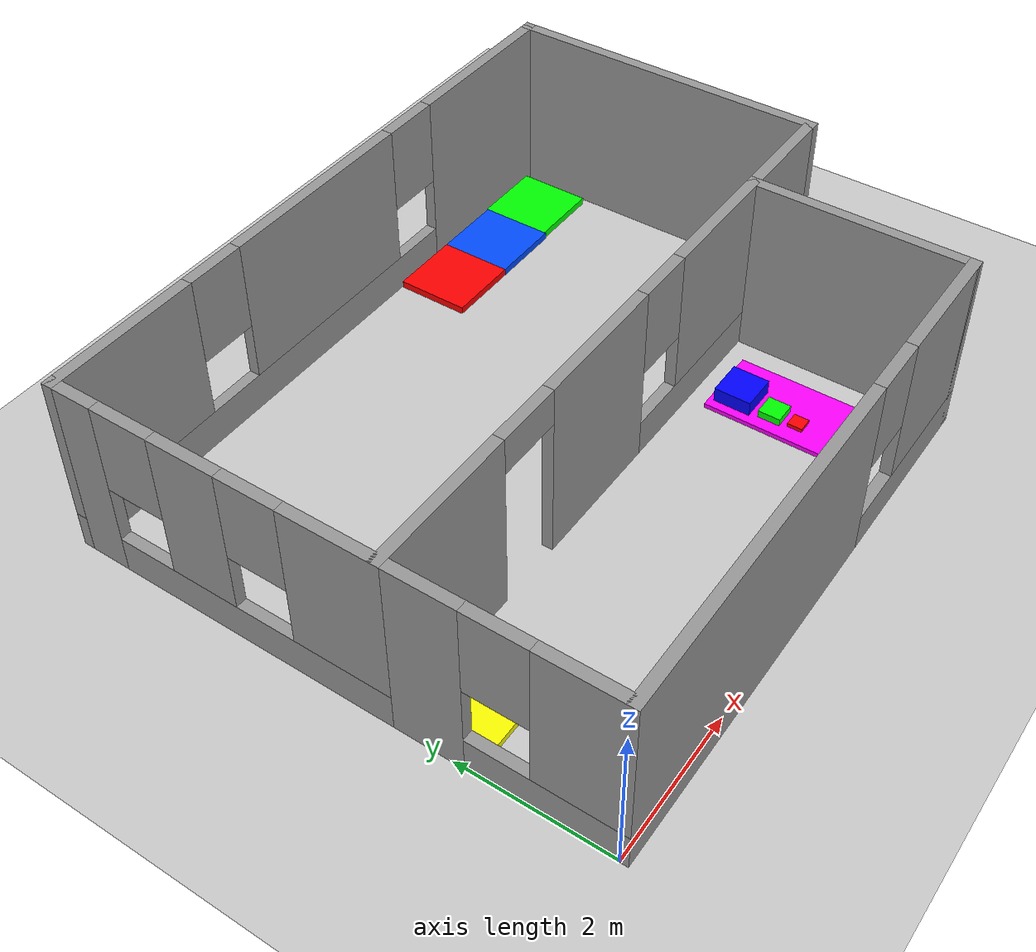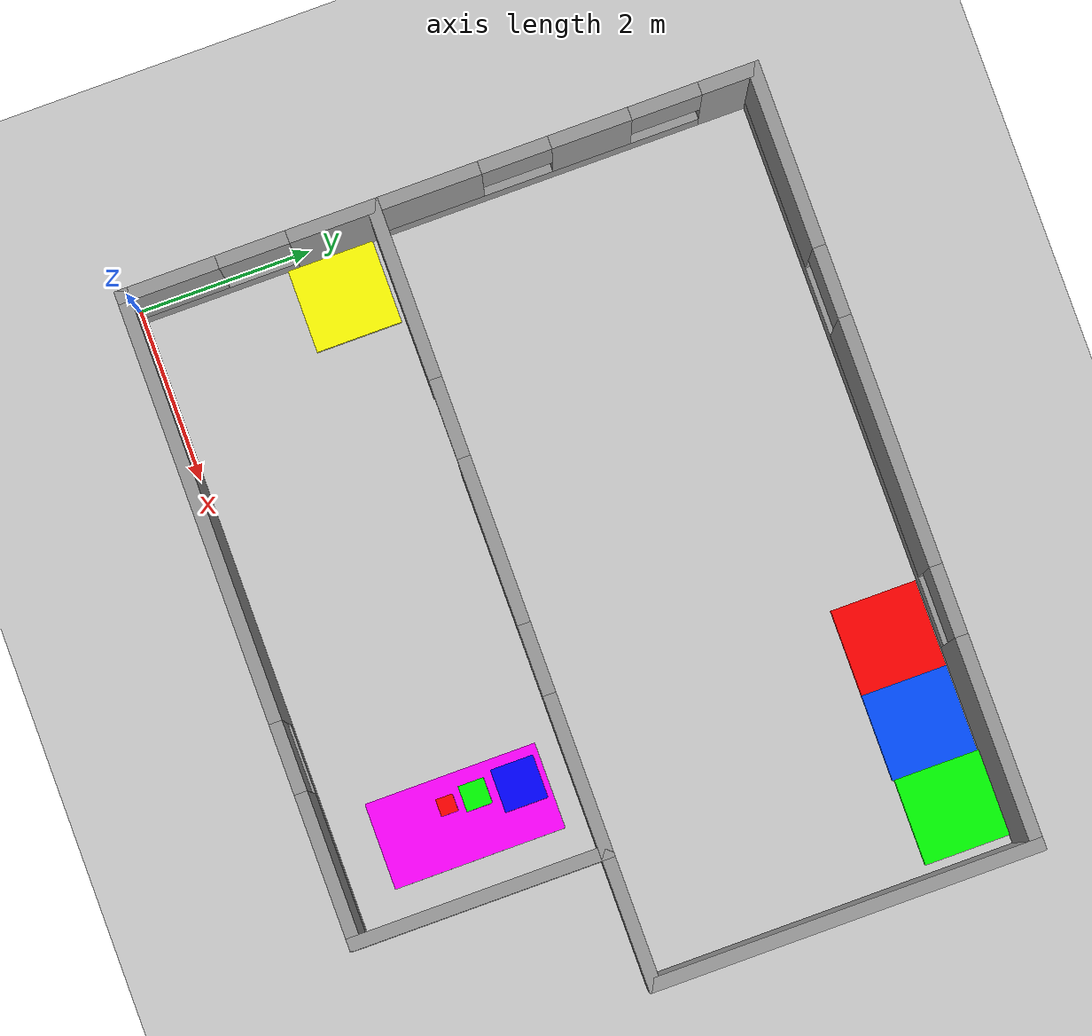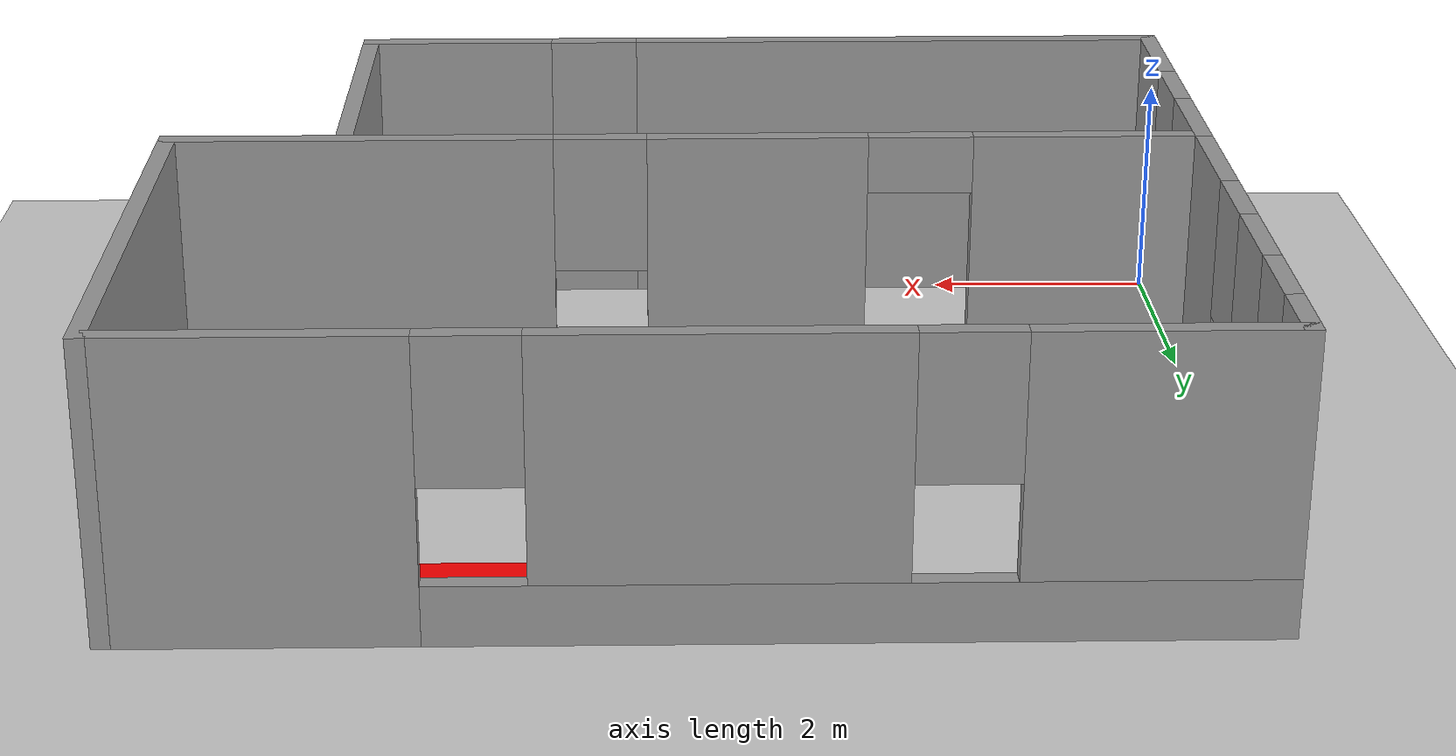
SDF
<sdf version="1.7">
 <world name="default">
  <light name="sun" type="directional">
   <pose>0 0 10 0 -0 0</pose>
   <diffuse>0.8 0.8 0.8 1</diffuse>
   <specular>0.2 0.2 0.2 1</specular>
   <attenuation>
    <range>1000</range>
    <constant>0.9</constant>
    <linear>0.01</linear>
    <quadratic>0.001</quadratic>
   </attenuation>
   <direction>-0.5 0.1 -0.9</direction>
   <spot><inner_angle>0</inner_angle><outer_angle>0</outer_angle><falloff>0</falloff></spot>
  </light>
  <model name="ground_plane">
   <static>1</static>
   <link name="link">
    <collision name="collision">
     <geometry><plane><normal>0 0 1</normal><size>100 100</size></plane></geometry>
     <surface>
      <contact><collide_bitmask>65535</collide_bitmask></contact>
      <friction><ode><mu>100</mu><mu2>50</mu2></ode></friction>
     </surface>
    </collision>
    <visual name="visual">
     <cast_shadows>0</cast_shadows>
     <geometry><plane><normal>0 0 1</normal><size>100 100</size></plane></geometry>
     <material>
      <script><uri>file://media/materials/scripts/gazebo.material</uri><name>Gazebo/Grey</name></script>
     </material>
    </visual>
   </link>
  </model>
  <gravity>0 0 -9.8</gravity>
  <magnetic_field>6e-06 2.3e-05 -4.2e-05</magnetic_field>
  <atmosphere type="adiabatic"/>
  <physics type="ode">
   <max_step_size>0.001</max_step_size>
   <real_time_factor>1</real_time_factor>
   <real_time_update_rate>1000</real_time_update_rate>
  </physics>
  <scene><ambient>0.4 0.4 0.4 1</ambient><background>0.7 0.7 0.7 1</background><shadows>1</shadows></scene>
  <spherical_coordinates>
   <surface_model>EARTH_WGS84</surface_model>
   <latitude_deg>0</latitude_deg>
   <longitude_deg>0</longitude_deg>
   <elevation>0</elevation>
   <heading_deg>0</heading_deg>
  </spherical_coordinates>
  <model name="Wall">
   <pose>4.48981 3.69223 0 0 -0 0</pose>
   <link name="Wall_0">
    <pose>-4.425 1.3025 0 0 -0 -1.5708</pose>
    <visual name="Wall_0_Visual_0">
     <pose>-1.90146 0 1.25 0 -0 0</pose>
     <geometry><box><size>0.697073 0.15 2.5</size></box></geometry>
     <material>
      <script><uri>file://media/materials/scripts/gazebo.material</uri><name>Gazebo/Grey</name></script>
      <ambient>1 1 1 1</ambient>
     </material>
     <meta><layer>0</layer></meta>
    </visual>
    <collision name="Wall_0_Collision_0">
     <geometry><box><size>0.697073 0.15 2.5</size></box></geometry>
     <pose>-1.90146 0 1.25 0 -0 0</pose>
    </collision>
    <visual name="Wall_0_Visual_1">
     <pose>0.348536 0 0.25 0 -0 0</pose>
     <geometry><box><size>3.80293 0.15 0.5</size></box></geometry>
     <material>
      <script><uri>file://media/materials/scripts/gazebo.material</uri><name>Gazebo/Grey</name></script>
      <ambient>1 1 1 1</ambient>
     </material>
     <meta><layer>0</layer></meta>
    </visual>
    <collision name="Wall_0_Collision_1">
     <geometry><box><size>3.80293 0.15 0.5</size></box></geometry>
     <pose>0.348536 0 0.25 0 -0 0</pose>
    </collision>
    <visual name="Wall_0_Visual_2">
     <pose>-0.295914 0 1.5 0 -0 0</pose>
     <geometry><box><size>0.914026 0.15 2</size></box></geometry>
     <material>
      <script><uri>file://media/materials/scripts/gazebo.material</uri><name>Gazebo/Grey</name></script>
      <ambient>1 1 1 1</ambient>
     </material>
     <meta><layer>0</layer></meta>
    </visual>
    <collision name="Wall_0_Collision_2">
     <geometry><box><size>0.914026 0.15 2</size></box></geometry>
     <pose>-0.295914 0 1.5 0 -0 0</pose>
    </collision>
    <visual name="Wall_0_Visual_3">
     <pose>1.60555 0 1.5 0 -0 0</pose>
     <geometry><box><size>1.2889 0.15 2</size></box></geometry>
     <material>
      <script><uri>file://media/materials/scripts/gazebo.material</uri><name>Gazebo/Grey</name></script>
      <ambient>1 1 1 1</ambient>
     </material>
     <meta><layer>0</layer></meta>
    </visual>
    <collision name="Wall_0_Collision_3">
     <geometry><box><size>1.2889 0.15 2</size></box></geometry>
     <pose>1.60555 0 1.5 0 -0 0</pose>
    </collision>
    <visual name="Wall_0_Visual_4">
     <pose>-1.15293 0 1.9 0 -0 0</pose>
     <geometry><box><size>0.8 0.15 1.2</size></box></geometry>
     <material>
      <script><uri>file://media/materials/scripts/gazebo.material</uri><name>Gazebo/Grey</name></script>
      <ambient>1 1 1 1</ambient>
     </material>
     <meta><layer>0</layer></meta>
    </visual>
    <collision name="Wall_0_Collision_4">
     <geometry><box><size>0.8 0.15 1.2</size></box></geometry>
     <pose>-1.15293 0 1.9 0 -0 0</pose>
    </collision>
    <visual name="Wall_0_Visual_5">
     <pose>0.561099 0 1.9 0 -0 0</pose>
     <geometry><box><size>0.8 0.15 1.2</size></box></geometry>
     <material>
      <script><uri>file://media/materials/scripts/gazebo.material</uri><name>Gazebo/Grey</name></script>
      <ambient>1 1 1 1</ambient>
     </material>
     <meta><layer>0</layer></meta>
    </visual>
    <collision name="Wall_0_Collision_5">
     <geometry><box><size>0.8 0.15 1.2</size></box></geometry>
     <pose>0.561099 0 1.9 0 -0 0</pose>
    </collision>
   </link>
   <link name="Wall_1">
    <pose>0 -0.8725 0 0 -0 0</pose>
    <visual name="Wall_1_Visual_0">
     <pose>-3.4775 0 1.25 0 -0 0</pose>
     <geometry><box><size>2.045 0.15 2.5</size></box></geometry>
     <material>
      <script><uri>file://media/materials/scripts/gazebo.material</uri><name>Gazebo/Grey</name></script>
      <ambient>1 1 1 1</ambient>
     </material>
     <meta><layer>0</layer></meta>
    </visual>
    <collision name="Wall_1_Collision_0">
     <geometry><box><size>2.045 0.15 2.5</size></box></geometry>
     <pose>-3.4775 0 1.25 0 -0 0</pose>
    </collision>
    <visual name="Wall_1_Visual_1">
     <pose>-0.608606 0 1.25 0 -0 0</pose>
     <geometry><box><size>1.89279 0.15 2.5</size></box></geometry>
     <material>
      <script><uri>file://media/materials/scripts/gazebo.material</uri><name>Gazebo/Grey</name></script>
      <ambient>1 1 1 1</ambient>
     </material>
     <meta><layer>0</layer></meta>
    </visual>
    <collision name="Wall_1_Collision_1">
     <geometry><box><size>1.89279 0.15 2.5</size></box></geometry>
     <pose>-0.608606 0 1.25 0 -0 0</pose>
    </collision>
    <visual name="Wall_1_Visual_2">
     <pose>2.41889 0 0.25 0 -0 0</pose>
     <geometry><box><size>4.16221 0.15 0.5</size></box></geometry>
     <material>
      <script><uri>file://media/materials/scripts/gazebo.material</uri><name>Gazebo/Grey</name></script>
      <ambient>1 1 1 1</ambient>
     </material>
     <meta><layer>0</layer></meta>
    </visual>
    <collision name="Wall_1_Collision_2">
     <geometry><box><size>4.16221 0.15 0.5</size></box></geometry>
     <pose>2.41889 0 0.25 0 -0 0</pose>
    </collision>
    <visual name="Wall_1_Visual_3">
     <pose>2.81889 0 1.5 0 -0 0</pose>
     <geometry><box><size>3.36221 0.15 2</size></box></geometry>
     <material>
      <script><uri>file://media/materials/scripts/gazebo.material</uri><name>Gazebo/Grey</name></script>
      <ambient>1 1 1 1</ambient>
     </material>
     <meta><layer>0</layer></meta>
    </visual>
    <collision name="Wall_1_Collision_3">
     <geometry><box><size>3.36221 0.15 2</size></box></geometry>
     <pose>2.81889 0 1.5 0 -0 0</pose>
    </collision>
    <visual name="Wall_1_Visual_4">
     <pose>0.737788 0 1.9 0 -0 0</pose>
     <geometry><box><size>0.8 0.15 1.2</size></box></geometry>
     <material>
      <script><uri>file://media/materials/scripts/gazebo.material</uri><name>Gazebo/Grey</name></script>
      <ambient>1 1 1 1</ambient>
     </material>
     <meta><layer>0</layer></meta>
    </visual>
    <collision name="Wall_1_Collision_4">
     <geometry><box><size>0.8 0.15 1.2</size></box></geometry>
     <pose>0.737788 0 1.9 0 -0 0</pose>
    </collision>
    <visual name="Wall_1_Visual_5">
     <pose>-2.005 0 2.25 0 -0 0</pose>
     <geometry><box><size>0.9 0.15 0.5</size></box></geometry>
     <material>
      <script><uri>file://media/materials/scripts/gazebo.material</uri><name>Gazebo/Grey</name></script>
      <ambient>1 1 1 1</ambient>
     </material>
     <meta><layer>0</layer></meta>
    </visual>
    <collision name="Wall_1_Collision_5">
     <geometry><box><size>0.9 0.15 0.5</size></box></geometry>
     <pose>-2.005 0 2.25 0 -0 0</pose>
    </collision>
   </link>
   <link name="Wall_2">
    <collision name="Wall_2_Collision">
     <geometry><box><size>4.5 0.15 2.5</size></box></geometry>
     <pose>0 0 1.25 0 -0 0</pose>
    </collision>
    <visual name="Wall_2_Visual">
     <pose>0 0 1.25 0 -0 0</pose>
     <geometry><box><size>4.5 0.15 2.5</size></box></geometry>
     <material>
      <script><uri>file://media/materials/scripts/gazebo.material</uri><name>Gazebo/Grey</name></script>
      <ambient>1 1 1 1</ambient>
     </material>
     <meta><layer>0</layer></meta>
    </visual>
    <pose>4.425 1.3025 0 0 -0 1.5708</pose>
   </link>
   <link name="Wall_3">
    <pose>0 3.4775 0 0 -0 3.14159</pose>
    <visual name="Wall_3_Visual_0">
     <pose>-3.27364 0 1.25 0 -0 0</pose>
     <geometry><box><size>2.45273 0.15 2.5</size></box></geometry>
     <material>
      <script><uri>file://media/materials/scripts/gazebo.material</uri><name>Gazebo/Grey</name></script>
      <ambient>1 1 1 1</ambient>
     </material>
     <meta><layer>0</layer></meta>
    </visual>
    <collision name="Wall_3_Collision_0">
     <geometry><box><size>2.45273 0.15 2.5</size></box></geometry>
     <pose>-3.27364 0 1.25 0 -0 0</pose>
    </collision>
    <visual name="Wall_3_Visual_1">
     <pose>1.22636 0 0.25 0 -0 0</pose>
     <geometry><box><size>6.54727 0.15 0.5</size></box></geometry>
     <material>
      <script><uri>file://media/materials/scripts/gazebo.material</uri><name>Gazebo/Grey</name></script>
      <ambient>1 1 1 1</ambient>
     </material>
     <meta><layer>0</layer></meta>
    </visual>
    <collision name="Wall_3_Collision_1">
     <geometry><box><size>6.54727 0.15 0.5</size></box></geometry>
     <pose>1.22636 0 0.25 0 -0 0</pose>
    </collision>
    <visual name="Wall_3_Visual_2">
     <pose>0.171695 0 1.5 0 -0 0</pose>
     <geometry><box><size>2.83793 0.15 2</size></box></geometry>
     <material>
      <script><uri>file://media/materials/scripts/gazebo.material</uri><name>Gazebo/Grey</name></script>
      <ambient>1 1 1 1</ambient>
     </material>
     <meta><layer>0</layer></meta>
    </visual>
    <collision name="Wall_3_Collision_2">
     <geometry><box><size>2.83793 0.15 2</size></box></geometry>
     <pose>0.171695 0 1.5 0 -0 0</pose>
    </collision>
    <visual name="Wall_3_Visual_3">
     <pose>3.44533 0 1.5 0 -0 0</pose>
     <geometry><box><size>2.10934 0.15 2</size></box></geometry>
     <material>
      <script><uri>file://media/materials/scripts/gazebo.material</uri><name>Gazebo/Grey</name></script>
      <ambient>1 1 1 1</ambient>
     </material>
     <meta><layer>0</layer></meta>
    </visual>
    <collision name="Wall_3_Collision_3">
     <geometry><box><size>2.10934 0.15 2</size></box></geometry>
     <pose>3.44533 0 1.5 0 -0 0</pose>
    </collision>
    <visual name="Wall_3_Visual_4">
     <pose>-1.64727 0 1.9 0 -0 0</pose>
     <geometry><box><size>0.8 0.15 1.2</size></box></geometry>
     <material>
      <script><uri>file://media/materials/scripts/gazebo.material</uri><name>Gazebo/Grey</name></script>
      <ambient>1 1 1 1</ambient>
     </material>
     <meta><layer>0</layer></meta>
    </visual>
    <collision name="Wall_3_Collision_4">
     <geometry><box><size>0.8 0.15 1.2</size></box></geometry>
     <pose>-1.64727 0 1.9 0 -0 0</pose>
    </collision>
    <visual name="Wall_3_Visual_5">
     <pose>1.99066 0 1.9 0 -0 0</pose>
     <geometry><box><size>0.8 0.15 1.2</size></box></geometry>
     <material>
      <script><uri>file://media/materials/scripts/gazebo.material</uri><name>Gazebo/Grey</name></script>
      <ambient>1 1 1 1</ambient>
     </material>
     <meta><layer>0</layer></meta>
    </visual>
    <collision name="Wall_3_Collision_5">
     <geometry><box><size>0.8 0.15 1.2</size></box></geometry>
     <pose>1.99066 0 1.9 0 -0 0</pose>
    </collision>
   </link>
   <link name="Wall_5">
    <pose>-4.425 -2.2975 0 0 -0 -1.5708</pose>
    <visual name="Wall_5_Visual_0">
     <pose>-0.97405 0 1.25 0 -0 0</pose>
     <geometry><box><size>1.0519 0.15 2.5</size></box></geometry>
     <material>
      <script><uri>file://media/materials/scripts/gazebo.material</uri><name>Gazebo/Grey</name></script>
      <ambient>1 1 1 1</ambient>
     </material>
     <meta><layer>0</layer></meta>
    </visual>
    <collision name="Wall_5_Collision_0">
     <geometry><box><size>1.0519 0.15 2.5</size></box></geometry>
     <pose>-0.97405 0 1.25 0 -0 0</pose>
    </collision>
    <visual name="Wall_5_Visual_1">
     <pose>0.52595 0 0.25 0 -0 0</pose>
     <geometry><box><size>1.9481 0.15 0.5</size></box></geometry>
     <material>
      <script><uri>file://media/materials/scripts/gazebo.material</uri><name>Gazebo/Grey</name></script>
      <ambient>1 1 1 1</ambient>
     </material>
     <meta><layer>0</layer></meta>
    </visual>
    <collision name="Wall_5_Collision_1">
     <geometry><box><size>1.9481 0.15 0.5</size></box></geometry>
     <pose>0.52595 0 0.25 0 -0 0</pose>
    </collision>
    <visual name="Wall_5_Visual_2">
     <pose>0.92595 0 1.5 0 -0 0</pose>
     <geometry><box><size>1.1481 0.15 2</size></box></geometry>
     <material>
      <script><uri>file://media/materials/scripts/gazebo.material</uri><name>Gazebo/Grey</name></script>
      <ambient>1 1 1 1</ambient>
     </material>
     <meta><layer>0</layer></meta>
    </visual>
    <collision name="Wall_5_Collision_2">
     <geometry><box><size>1.1481 0.15 2</size></box></geometry>
     <pose>0.92595 0 1.5 0 -0 0</pose>
    </collision>
    <visual name="Wall_5_Visual_3">
     <pose>-0.0481 0 1.9 0 -0 0</pose>
     <geometry><box><size>0.8 0.15 1.2</size></box></geometry>
     <material>
      <script><uri>file://media/materials/scripts/gazebo.material</uri><name>Gazebo/Grey</name></script>
      <ambient>1 1 1 1</ambient>
     </material>
     <meta><layer>0</layer></meta>
    </visual>
    <collision name="Wall_5_Collision_3">
     <geometry><box><size>0.8 0.15 1.2</size></box></geometry>
     <pose>-0.0481 0 1.9 0 -0 0</pose>
    </collision>
   </link>
   <link name="Wall_6">
    <pose>-0.75 -3.7225 0 0 -0 0</pose>
    <visual name="Wall_6_Visual_0">
     <pose>-1.28738 0 1.25 0 -0 0</pose>
     <geometry><box><size>4.92524 0.15 2.5</size></box></geometry>
     <material>
      <script><uri>file://media/materials/scripts/gazebo.material</uri><name>Gazebo/Grey</name></script>
      <ambient>1 1 1 1</ambient>
     </material>
     <meta><layer>0</layer></meta>
    </visual>
    <collision name="Wall_6_Collision_0">
     <geometry><box><size>4.92524 0.15 2.5</size></box></geometry>
     <pose>-1.28738 0 1.25 0 -0 0</pose>
    </collision>
    <visual name="Wall_6_Visual_1">
     <pose>2.46262 0 0.25 0 -0 0</pose>
     <geometry><box><size>2.57476 0.15 0.5</size></box></geometry>
     <material>
      <script><uri>file://media/materials/scripts/gazebo.material</uri><name>Gazebo/Grey</name></script>
      <ambient>1 1 1 1</ambient>
     </material>
     <meta><layer>0</layer></meta>
    </visual>
    <collision name="Wall_6_Collision_1">
     <geometry><box><size>2.57476 0.15 0.5</size></box></geometry>
     <pose>2.46262 0 0.25 0 -0 0</pose>
    </collision>
    <visual name="Wall_6_Visual_2">
     <pose>2.86262 0 1.5 0 -0 0</pose>
     <geometry><box><size>1.77476 0.15 2</size></box></geometry>
     <material>
      <script><uri>file://media/materials/scripts/gazebo.material</uri><name>Gazebo/Grey</name></script>
      <ambient>1 1 1 1</ambient>
     </material>
     <meta><layer>0</layer></meta>
    </visual>
    <collision name="Wall_6_Collision_2">
     <geometry><box><size>1.77476 0.15 2</size></box></geometry>
     <pose>2.86262 0 1.5 0 -0 0</pose>
    </collision>
    <visual name="Wall_6_Visual_3">
     <pose>1.57524 0 1.9 0 -0 0</pose>
     <geometry><box><size>0.8 0.15 1.2</size></box></geometry>
     <material>
      <script><uri>file://media/materials/scripts/gazebo.material</uri><name>Gazebo/Grey</name></script>
      <ambient>1 1 1 1</ambient>
     </material>
     <meta><layer>0</layer></meta>
    </visual>
    <collision name="Wall_6_Collision_3">
     <geometry><box><size>0.8 0.15 1.2</size></box></geometry>
     <pose>1.57524 0 1.9 0 -0 0</pose>
    </collision>
   </link>
   <link name="Wall_7">
    <collision name="Wall_7_Collision">
     <geometry><box><size>3 0.15 2.5</size></box></geometry>
     <pose>0 0 1.25 0 -0 0</pose>
    </collision>
    <visual name="Wall_7_Visual">
     <pose>0 0 1.25 0 -0 0</pose>
     <geometry><box><size>3 0.15 2.5</size></box></geometry>
     <material>
      <script><uri>file://media/materials/scripts/gazebo.material</uri><name>Gazebo/Grey</name></script>
      <ambient>1 1 1 1</ambient>
     </material>
     <meta><layer>0</layer></meta>
    </visual>
    <pose>2.925 -2.2975 0 0 -0 1.5708</pose>
   </link>
   <static>1</static>
  </model>
  <model name="Base_Blue">
   <link name="link_1">
    <inertial>
     <mass>1</mass>
     <inertia>
      <ixx>0.166667</ixx>
      <ixy>0</ixy>
      <ixz>0</ixz>
      <iyy>0.166667</iyy>
      <iyz>0</iyz>
      <izz>0.166667</izz>
     </inertia>
    </inertial>
    <pose>1.59553 1.28003 0.5 0 -0 0</pose>
    <visual name="visual">
     <geometry><box><size>1 1 0.1</size></box></geometry>
     <material>
      <lighting>1</lighting>
      <script><uri>file://media/materials/scripts/gazebo.material</uri><name>Gazebo/Grey</name></script>
      <shader type="pixel"><normal_map>__default__</normal_map></shader>
      <ambient>0 0.3 1 1</ambient>
      <diffuse>0.7 0.7 0.7 1</diffuse>
      <specular>0.01 0.01 0.01 1</specular>
      <emissive>0 0 0 1</emissive>
     </material>
    </visual>
    <collision name="collision">
     <geometry><box><size>1 1 0.1</size></box></geometry>
     <surface>
      <friction>
       <ode><mu>1</mu><mu2>1</mu2><fdir1>0 0 0</fdir1><slip1>0</slip1><slip2>0</slip2></ode>
       <torsional>
        <coefficient>1</coefficient>
        <patch_radius>0</patch_radius>
        <surface_radius>0</surface_radius>
        <use_patch_radius>1</use_patch_radius>
        <ode><slip>0</slip></ode>
       </torsional>
      </friction>
      <bounce><restitution_coefficient>0</restitution_coefficient><threshold>1e+06</threshold></bounce>
      <contact>
       <collide_without_contact>0</collide_without_contact>
       <collide_without_contact_bitmask>1</collide_without_contact_bitmask>
       <collide_bitmask>1</collide_bitmask>
       <ode>
        <soft_cfm>0</soft_cfm>
        <soft_erp>0.2</soft_erp>
        <kp>1e+13</kp>
        <kd>1</kd>
        <max_vel>0.01</max_vel>
        <min_depth>0</min_depth>
       </ode>
       <bullet>
        <split_impulse>1</split_impulse>
        <split_impulse_penetration_threshold>-0.01</split_impulse_penetration_threshold>
        <soft_cfm>0</soft_cfm>
        <soft_erp>0.2</soft_erp>
        <kp>1e+13</kp>
        <kd>1</kd>
       </bullet>
      </contact>
     </surface>
    </collision>
   </link>
   <static>0</static>
   <pose>5.65 5.3 -0.45 0 -0 0</pose>
  </model>
  <model name="Base_Green">
   <link name="link_1">
    <inertial>
     <mass>1</mass>
     <inertia>
      <ixx>0.166667</ixx>
      <ixy>0</ixy>
      <ixz>0</ixz>
      <iyy>0.166667</iyy>
      <iyz>0</iyz>
      <izz>0.166667</izz>
     </inertia>
    </inertial>
    <pose>1.04417 1.15115 0 0 -0 0</pose>
    <visual name="visual">
     <geometry><box><size>1 1 0.1</size></box></geometry>
     <material>
      <lighting>1</lighting>
      <script><uri>file://media/materials/scripts/gazebo.material</uri><name>Gazebo/Grey</name></script>
      <shader type="pixel"><normal_map>__default__</normal_map></shader>
      <ambient>0 1 0 0</ambient>
      <diffuse>0.7 0.7 0.7 1</diffuse>
      <specular>0.01 0.01 0.01 1</specular>
      <emissive>0 0 0 1</emissive>
     </material>
    </visual>
    <collision name="collision">
     <geometry><box><size>1 1 0.1</size></box></geometry>
     <surface>
      <friction>
       <ode><mu>1</mu><mu2>1</mu2><fdir1>0 0 0</fdir1><slip1>0</slip1><slip2>0</slip2></ode>
       <torsional>
        <coefficient>1</coefficient>
        <patch_radius>0</patch_radius>
        <surface_radius>0</surface_radius>
        <use_patch_radius>1</use_patch_radius>
        <ode><slip>0</slip></ode>
       </torsional>
      </friction>
      <bounce><restitution_coefficient>0</restitution_coefficient><threshold>1e+06</threshold></bounce>
      <contact>
       <collide_without_contact>0</collide_without_contact>
       <collide_without_contact_bitmask>1</collide_without_contact_bitmask>
       <collide_bitmask>1</collide_bitmask>
       <ode>
        <soft_cfm>0</soft_cfm>
        <soft_erp>0.2</soft_erp>
        <kp>1e+13</kp>
        <kd>1</kd>
        <max_vel>0.01</max_vel>
        <min_depth>0</min_depth>
       </ode>
       <bullet>
        <split_impulse>1</split_impulse>
        <split_impulse_penetration_threshold>-0.01</split_impulse_penetration_threshold>
        <soft_cfm>0</soft_cfm>
        <soft_erp>0.2</soft_erp>
        <kp>1e+13</kp>
        <kd>1</kd>
       </bullet>
      </contact>
     </surface>
    </collision>
   </link>
   <static>0</static>
   <pose>7.2 5.45 0.05 0 -0 0</pose>
  </model>
  <model name="Base_Red">
   <link name="link_1">
    <inertial>
     <mass>1</mass>
     <inertia>
      <ixx>0.166667</ixx>
      <ixy>0</ixy>
      <ixz>0</ixz>
      <iyy>0.166667</iyy>
      <iyz>0</iyz>
      <izz>0.166667</izz>
     </inertia>
    </inertial>
    <pose>1.59553 1.28003 0.5 0 -0 0</pose>
    <visual name="visual">
     <geometry><box><size>1 1 0.1</size></box></geometry>
     <material>
      <lighting>1</lighting>
      <script><uri>file://media/materials/scripts/gazebo.material</uri><name>Gazebo/Grey</name></script>
      <shader type="pixel"><normal_map>__default__</normal_map></shader>
      <ambient>1 0 0 0</ambient>
      <diffuse>0.7 0.7 0.7 1</diffuse>
      <specular>0.01 0.01 0.01 1</specular>
      <emissive>0 0 0 1</emissive>
     </material>
    </visual>
    <collision name="collision">
     <geometry><box><size>1 1 0.1</size></box></geometry>
     <surface>
      <friction>
       <ode><mu>1</mu><mu2>1</mu2><fdir1>0 0 0</fdir1><slip1>0</slip1><slip2>0</slip2></ode>
       <torsional>
        <coefficient>1</coefficient>
        <patch_radius>0</patch_radius>
        <surface_radius>0</surface_radius>
        <use_patch_radius>1</use_patch_radius>
        <ode><slip>0</slip></ode>
       </torsional>
      </friction>
      <bounce><restitution_coefficient>0</restitution_coefficient><threshold>1e+06</threshold></bounce>
      <contact>
       <collide_without_contact>0</collide_without_contact>
       <collide_without_contact_bitmask>1</collide_without_contact_bitmask>
       <collide_bitmask>1</collide_bitmask>
       <ode>
        <soft_cfm>0</soft_cfm>
        <soft_erp>0.2</soft_erp>
        <kp>1e+13</kp>
        <kd>1</kd>
        <max_vel>0.01</max_vel>
        <min_depth>0</min_depth>
       </ode>
       <bullet>
        <split_impulse>1</split_impulse>
        <split_impulse_penetration_threshold>-0.01</split_impulse_penetration_threshold>
        <soft_cfm>0</soft_cfm>
        <soft_erp>0.2</soft_erp>
        <kp>1e+13</kp>
        <kd>1</kd>
       </bullet>
      </contact>
     </surface>
    </collision>
   </link>
   <static>0</static>
   <pose>4.65 5.3 -0.45 0 -0 0</pose>
  </model>
  <model name="Base_Object">
   <link name="link_2">
    <inertial>
     <mass>1</mass>
     <inertia>
      <ixx>0.166667</ixx>
      <ixy>0</ixy>
      <ixz>0</ixz>
      <iyy>0.166667</iyy>
      <iyz>0</iyz>
      <izz>0.166667</izz>
     </inertia>
    </inertial>
    <visual name="visual">
     <geometry><box><size>1 2 0.1</size></box></geometry>
     <material>
      <lighting>1</lighting>
      <script><uri>file://media/materials/scripts/gazebo.material</uri><name>Gazebo/Grey</name></script>
      <shader type="pixel"><normal_map>__default__</normal_map></shader>
      <ambient>1 0 1 0</ambient>
      <diffuse>0.7 0.7 0.7 1</diffuse>
      <specular>0.01 0.01 0.01 1</specular>
      <emissive>0 0 0 1</emissive>
     </material>
    </visual>
    <collision name="collision">
     <geometry><box><size>1 2 0.1</size></box></geometry>
     <surface>
      <friction>
       <ode><mu>1</mu><mu2>1</mu2><fdir1>0 0 0</fdir1><slip1>0</slip1><slip2>0</slip2></ode>
       <torsional>
        <coefficient>1</coefficient>
        <patch_radius>0</patch_radius>
        <surface_radius>0</surface_radius>
        <use_patch_radius>1</use_patch_radius>
        <ode><slip>0</slip></ode>
       </torsional>
      </friction>
      <bounce><restitution_coefficient>0</restitution_coefficient><threshold>1e+06</threshold></bounce>
      <contact>
       <collide_without_contact>0</collide_without_contact>
       <collide_without_contact_bitmask>1</collide_without_contact_bitmask>
       <collide_bitmask>1</collide_bitmask>
       <ode>
        <soft_cfm>0</soft_cfm>
        <soft_erp>0.2</soft_erp>
        <kp>1e+13</kp>
        <kd>1</kd>
        <max_vel>0.01</max_vel>
        <min_depth>0</min_depth>
       </ode>
       <bullet>
        <split_impulse>1</split_impulse>
        <split_impulse_penetration_threshold>-0.01</split_impulse_penetration_threshold>
        <soft_cfm>0</soft_cfm>
        <soft_erp>0.2</soft_erp>
        <kp>1e+13</kp>
        <kd>1</kd>
       </bullet>
      </contact>
     </surface>
    </collision>
   </link>
   <static>0</static>
   <pose>6.5 1.5 0 0 -0 0</pose>
  </model>
  <model name="Box_big_blue">
   <link name="link">
    <inertial>
     <mass>1</mass>
     <inertia>
      <ixx>0.166667</ixx>
      <ixy>0</ixy>
      <ixz>0</ixz>
      <iyy>0.166667</iyy>
      <iyz>0</iyz>
      <izz>0.166667</izz>
     </inertia>
    </inertial>
    <visual name="visual">
     <geometry><box><size>0.5 0.5 0.5</size></box></geometry>
     <material>
      <script><name>Gazebo/Grey</name><uri>file://media/materials/scripts/gazebo.material</uri></script>
      <shader type="pixel"><normal_map>__default__</normal_map></shader>
      <ambient>0 0 1 1</ambient>
      <diffuse>0.7 0.7 0.7 1</diffuse>
      <specular>0.01 0.01 0.01 1</specular>
      <emissive>0 0 0 1</emissive>
     </material>
    </visual>
    <collision name="collision">
     <geometry><box><size>0.5 0.5 0.5</size></box></geometry>
     <surface>
      <friction>
       <ode><mu>1</mu><mu2>1</mu2><fdir1>0 0 0</fdir1><slip1>0</slip1><slip2>0</slip2></ode>
       <torsional>
        <coefficient>1</coefficient>
        <patch_radius>0</patch_radius>
        <surface_radius>0</surface_radius>
        <use_patch_radius>1</use_patch_radius>
        <ode><slip>0</slip></ode>
       </torsional>
      </friction>
      <bounce><restitution_coefficient>0</restitution_coefficient><threshold>1e+06</threshold></bounce>
      <contact>
       <collide_without_contact>0</collide_without_contact>
       <collide_without_contact_bitmask>1</collide_without_contact_bitmask>
       <collide_bitmask>1</collide_bitmask>
       <ode>
        <soft_cfm>0</soft_cfm>
        <soft_erp>0.2</soft_erp>
        <kp>1e+13</kp>
        <kd>1</kd>
        <max_vel>0.01</max_vel>
        <min_depth>0</min_depth>
       </ode>
       <bullet>
        <split_impulse>1</split_impulse>
        <split_impulse_penetration_threshold>-0.01</split_impulse_penetration_threshold>
        <soft_cfm>0</soft_cfm>
        <soft_erp>0.2</soft_erp>
        <kp>1e+13</kp>
        <kd>1</kd>
       </bullet>
      </contact>
     </surface>
    </collision>
   </link>
   <static>0</static>
   <pose>6.3704 2.18535 0 0 -0 0</pose>
  </model>
  <model name="Box_medium_green">
   <link name="link_0">
    <inertial>
     <mass>1</mass>
     <inertia>
      <ixx>0.166667</ixx>
      <ixy>0</ixy>
      <ixz>0</ixz>
      <iyy>0.166667</iyy>
      <iyz>0</iyz>
      <izz>0.166667</izz>
     </inertia>
    </inertial>
    <visual name="visual">
     <geometry><box><size>0.3 0.3 0.3</size></box></geometry>
     <material>
      <lighting>1</lighting>
      <script><uri>file://media/materials/scripts/gazebo.material</uri><name>Gazebo/Grey</name></script>
      <shader type="pixel"><normal_map>__default__</normal_map></shader>
      <ambient>0 1 0 0</ambient>
      <diffuse>0.7 0.7 0.7 1</diffuse>
      <specular>0.01 0.01 0.01 1</specular>
      <emissive>0 0 0 1</emissive>
     </material>
    </visual>
    <collision name="collision">
     <geometry><box><size>0.3 0.3 0.3</size></box></geometry>
     <surface>
      <friction>
       <ode><mu>1</mu><mu2>1</mu2><fdir1>0 0 0</fdir1><slip1>0</slip1><slip2>0</slip2></ode>
       <torsional>
        <coefficient>1</coefficient>
        <patch_radius>0</patch_radius>
        <surface_radius>0</surface_radius>
        <use_patch_radius>1</use_patch_radius>
        <ode><slip>0</slip></ode>
       </torsional>
      </friction>
      <bounce><restitution_coefficient>0</restitution_coefficient><threshold>1e+06</threshold></bounce>
      <contact>
       <collide_without_contact>0</collide_without_contact>
       <collide_without_contact_bitmask>1</collide_without_contact_bitmask>
       <collide_bitmask>1</collide_bitmask>
       <ode>
        <soft_cfm>0</soft_cfm>
        <soft_erp>0.2</soft_erp>
        <kp>1e+13</kp>
        <kd>1</kd>
        <max_vel>0.01</max_vel>
        <min_depth>0</min_depth>
       </ode>
       <bullet>
        <split_impulse>1</split_impulse>
        <split_impulse_penetration_threshold>-0.01</split_impulse_penetration_threshold>
        <soft_cfm>0</soft_cfm>
        <soft_erp>0.2</soft_erp>
        <kp>1e+13</kp>
        <kd>1</kd>
       </bullet>
      </contact>
     </surface>
    </collision>
   </link>
   <static>0</static>
   <pose>6.31749 1.6866 0 0 -0 0</pose>
  </model>
  <model name="Box_small_red">
   <link name="link_0">
    <inertial>
     <mass>1</mass>
     <inertia>
      <ixx>0.166667</ixx>
      <ixy>0</ixy>
      <ixz>0</ixz>
      <iyy>0.166667</iyy>
      <iyz>0</iyz>
      <izz>0.166667</izz>
     </inertia>
    </inertial>
    <pose>0 -4e-06 0 0 -0 0</pose>
    <visual name="visual">
     <geometry><box><size>0.2 0.2 0.2</size></box></geometry>
     <material>
      <lighting>1</lighting>
      <script><uri>file://media/materials/scripts/gazebo.material</uri><name>Gazebo/Grey</name></script>
      <shader type="pixel"><normal_map>__default__</normal_map></shader>
      <ambient>1 0 0 0</ambient>
      <diffuse>0.7 0.7 0.7 1</diffuse>
      <specular>0.01 0.01 0.01 1</specular>
      <emissive>0 0 0 1</emissive>
     </material>
    </visual>
    <collision name="collision">
     <geometry><box><size>0.2 0.2 0.2</size></box></geometry>
     <surface>
      <friction>
       <ode><mu>1</mu><mu2>1</mu2><fdir1>0 0 0</fdir1><slip1>0</slip1><slip2>0</slip2></ode>
       <torsional>
        <coefficient>1</coefficient>
        <patch_radius>0</patch_radius>
        <surface_radius>0</surface_radius>
        <use_patch_radius>1</use_patch_radius>
        <ode><slip>0</slip></ode>
       </torsional>
      </friction>
      <bounce><restitution_coefficient>0</restitution_coefficient><threshold>1e+06</threshold></bounce>
      <contact>
       <collide_without_contact>0</collide_without_contact>
       <collide_without_contact_bitmask>1</collide_without_contact_bitmask>
       <collide_bitmask>1</collide_bitmask>
       <ode>
        <soft_cfm>0</soft_cfm>
        <soft_erp>0.2</soft_erp>
        <kp>1e+13</kp>
        <kd>1</kd>
        <max_vel>0.01</max_vel>
        <min_depth>0</min_depth>
       </ode>
       <bullet>
        <split_impulse>1</split_impulse>
        <split_impulse_penetration_threshold>-0.01</split_impulse_penetration_threshold>
        <soft_cfm>0</soft_cfm>
        <soft_erp>0.2</soft_erp>
        <kp>1e+13</kp>
        <kd>1</kd>
       </bullet>
      </contact>
     </surface>
    </collision>
   </link>
   <static>0</static>
   <pose>6.31881 1.35251 0 0 -0 0</pose>
  </model>
  <model name="Home_base">
   <link name="link_0">
    <inertial>
     <mass>1</mass>
     <inertia>
      <ixx>0.166667</ixx>
      <ixy>0</ixy>
      <ixz>0</ixz>
      <iyy>0.166667</iyy>
      <iyz>0</iyz>
      <izz>0.166667</izz>
     </inertia>
    </inertial>
    <visual name="visual">
     <geometry><box><size>1 1 0.1</size></box></geometry>
     <material>
      <lighting>1</lighting>
      <script><uri>file://media/materials/scripts/gazebo.material</uri><name>Gazebo/Grey</name></script>
      <shader type="pixel"><normal_map>__default__</normal_map></shader>
      <ambient>1 1 0 0</ambient>
      <diffuse>0.7 0.7 0.7 1</diffuse>
      <specular>0.01 0.01 0.01 1</specular>
      <emissive>0 0 0 1</emissive>
     </material>
    </visual>
    <collision name="collision">
     <geometry><box><size>1 1 0.1</size></box></geometry>
     <surface>
      <friction>
       <ode><mu>1</mu><mu2>1</mu2><fdir1>0 0 0</fdir1><slip1>0</slip1><slip2>0</slip2></ode>
       <torsional>
        <coefficient>1</coefficient>
        <patch_radius>0</patch_radius>
        <surface_radius>0</surface_radius>
        <use_patch_radius>1</use_patch_radius>
        <ode><slip>0</slip></ode>
       </torsional>
      </friction>
      <bounce><restitution_coefficient>0</restitution_coefficient><threshold>1e+06</threshold></bounce>
      <contact>
       <collide_without_contact>0</collide_without_contact>
       <collide_without_contact_bitmask>1</collide_without_contact_bitmask>
       <collide_bitmask>1</collide_bitmask>
       <ode>
        <soft_cfm>0</soft_cfm>
        <soft_erp>0.2</soft_erp>
        <kp>1e+13</kp>
        <kd>1</kd>
        <max_vel>0.01</max_vel>
        <min_depth>0</min_depth>
       </ode>
       <bullet>
        <split_impulse>1</split_impulse>
        <split_impulse_penetration_threshold>-0.01</split_impulse_penetration_threshold>
        <soft_cfm>0</soft_cfm>
        <soft_erp>0.2</soft_erp>
        <kp>1e+13</kp>
        <kd>1</kd>
       </bullet>
      </contact>
     </surface>
    </collision>
   </link>
   <static>0</static>
   <pose>0.6 2.2 0.025 0 -0 0</pose>
  </model>
 </world>
</sdf>
